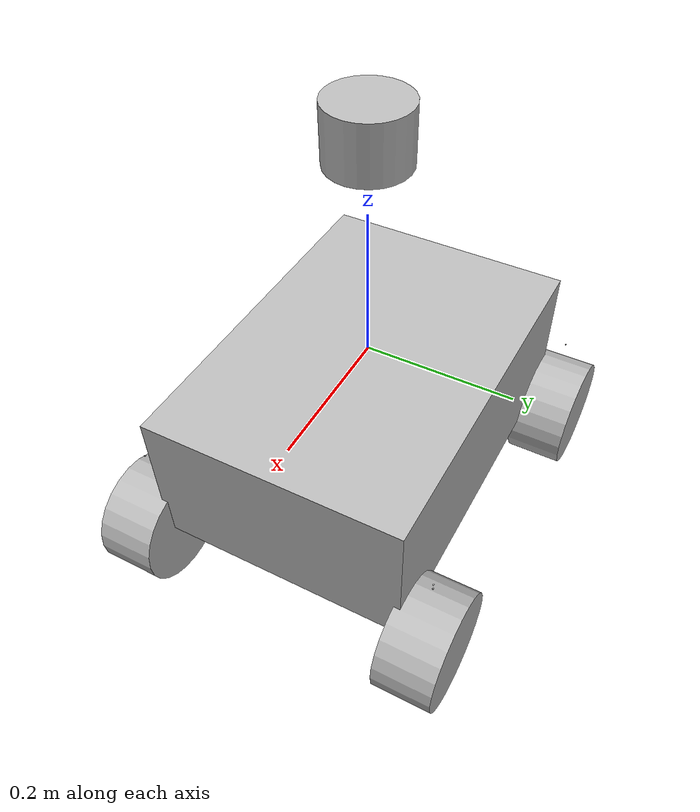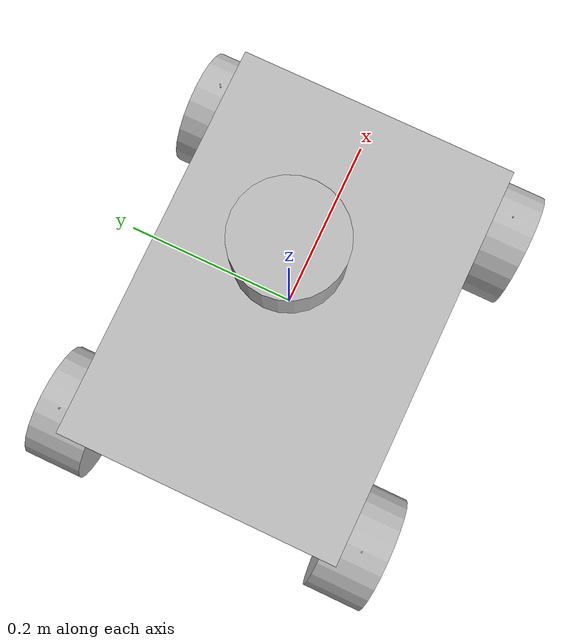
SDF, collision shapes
<sdf version='1.11'>
  <model name='ranger_mini_v2'>
    <link name='base_link'>
      <inertial>
        <pose>0 0 0 0 0 0</pose>
        <mass>10</mass>
        <inertia>
          <ixx>1</ixx>
          <ixy>0</ixy>
          <ixz>0</ixz>
          <iyy>1</iyy>
          <iyz>0</iyz>
          <izz>1</izz>
        </inertia>
      </inertial>
      <collision name='base_link_collision'>
        <pose>0 0 -0.10000000000000001 0 0 0</pose>
        <geometry>
          <box>
            <size>0.5 0.34999999999999998 0.20000000000000001</size>
          </box>
        </geometry>
      </collision>
      <visual name='base_link_visual'>
        <pose>0 0 0 1.5700000000000001 4.3368086899420177e-19 3.1400000000000001</pose>
        <geometry>
          <mesh>
            <scale>1 1 1</scale>
            <uri>model://ranger_description/models/meshes/ranger_base.dae</uri>
          </mesh>
        </geometry>
      </visual>
    </link>
    <joint name='fl_steering_wheel' type='revolute'>
      <pose relative_to='base_link'>0.23000000000000001 0.20599999999999999 -0.10000000000000001 0 0 0</pose>
      <parent>base_link</parent>
      <child>fl_steering_wheel_link</child>
      <axis>
        <xyz>0 0 1</xyz>
        <limit>
          <lower>-2.1000000000000001</lower>
          <upper>2.1000000000000001</upper>
          <effort>5</effort>
          <velocity>6.2800000000000002</velocity>
        </limit>
        <dynamics>
          <spring_reference>0</spring_reference>
          <spring_stiffness>0</spring_stiffness>
        </dynamics>
      </axis>
    </joint>
    <link name='fl_steering_wheel_link'>
      <pose relative_to='fl_steering_wheel'>0 0 0 0 0 0</pose>
      <inertial>
        <pose>0 0 0 0 0 0</pose>
        <mass>1</mass>
        <inertia>
          <ixx>0.01</ixx>
          <ixy>0</ixy>
          <ixz>0</ixz>
          <iyy>0.01</iyy>
          <iyz>0</iyz>
          <izz>0.01</izz>
        </inertia>
      </inertial>
      <collision name='fl_steering_wheel_link_collision'>
        <pose>0 0 0.0080000000000000002 0 0 0</pose>
        <geometry>
          <cylinder>
            <length>0.001</length>
            <radius>0.001</radius>
          </cylinder>
        </geometry>
      </collision>
      <collision name='fl_steering_wheel_link_collision_1'>
        <pose>0 0 0 0 0 0</pose>
        <geometry>
          <cylinder>
            <length>0.001</length>
            <radius>0.001</radius>
          </cylinder>
        </geometry>
      </collision>
      <visual name='fl_steering_wheel_link_visual'>
        <pose>-0.23000000000000001 -0.19400000000000001 0.10000000000000001 1.5700000000000001 4.3368086899420177e-19 3.1400000000000001</pose>
        <geometry>
          <mesh>
            <scale>1 1 1</scale>
            <uri>model://ranger_description/models/meshes/fl.dae</uri>
          </mesh>
        </geometry>
      </visual>
    </link>
    <joint name='fl_wheel' type='revolute'>
      <pose relative_to='fl_steering_wheel_link'>0 0 -0.12 0 0 0</pose>
      <parent>fl_steering_wheel_link</parent>
      <child>fl_wheel_link</child>
      <axis>
        <xyz>0 1 0</xyz>
        <limit>
          <lower>-inf</lower>
          <upper>inf</upper>
        </limit>
        <dynamics>
          <spring_reference>0</spring_reference>
          <spring_stiffness>0</spring_stiffness>
        </dynamics>
      </axis>
    </joint>
    <link name='fl_wheel_link'>
      <pose relative_to='fl_wheel'>0 0 0 0 0 0</pose>
      <inertial>
        <pose>0 0 0 0 0 0</pose>
        <mass>8</mass>
        <inertia>
          <ixx>0.1171</ixx>
          <ixy>0</ixy>
          <ixz>0</ixz>
          <iyy>0.1361</iyy>
          <iyz>0</iyz>
          <izz>0.1171</izz>
        </inertia>
      </inertial>
      <collision name='fl_wheel_link_collision'>
        <pose>0 0 0 1.5700000000000001 0 0</pose>
        <geometry>
          <cylinder>
            <length>0.080000000000000002</length>
            <radius>0.080000000000000002</radius>
          </cylinder>
        </geometry>
      </collision>
      <visual name='fl_wheel_link_visual'>
        <pose>0 0 0 1.5700000000000001 0 0</pose>
        <geometry>
          <cylinder>
            <length>0.01</length>
            <radius>0.01</radius>
          </cylinder>
        </geometry>
      </visual>
    </link>
    <joint name='fr_steering_wheel' type='revolute'>
      <pose relative_to='base_link'>0.23000000000000001 -0.20599999999999999 -0.10000000000000001 0 0 0</pose>
      <parent>base_link</parent>
      <child>fr_steering_wheel_link</child>
      <axis>
        <xyz>0 0 1</xyz>
        <limit>
          <lower>-2.1000000000000001</lower>
          <upper>2.1000000000000001</upper>
          <effort>5</effort>
          <velocity>6.2800000000000002</velocity>
        </limit>
        <dynamics>
          <spring_reference>0</spring_reference>
          <spring_stiffness>0</spring_stiffness>
        </dynamics>
      </axis>
    </joint>
    <link name='fr_steering_wheel_link'>
      <pose relative_to='fr_steering_wheel'>0 0 0 0 0 0</pose>
      <inertial>
        <pose>0 0 0 0 0 0</pose>
        <mass>1</mass>
        <inertia>
          <ixx>0.01</ixx>
          <ixy>0</ixy>
          <ixz>0</ixz>
          <iyy>0.01</iyy>
          <iyz>0</iyz>
          <izz>0.01</izz>
        </inertia>
      </inertial>
      <collision name='fr_steering_wheel_link_collision'>
        <pose>0 0 0.0080000000000000002 0 0 0</pose>
        <geometry>
          <cylinder>
            <length>0.001</length>
            <radius>0.001</radius>
          </cylinder>
        </geometry>
      </collision>
      <visual name='fr_steering_wheel_link_visual'>
        <pose>-0.23000000000000001 0.19400000000000001 0.10000000000000001 1.5700000000000001 4.3368086899420177e-19 3.1400000000000001</pose>
        <geometry>
          <mesh>
            <scale>1 1 1</scale>
            <uri>model://ranger_description/models/meshes/fr.dae</uri>
          </mesh>
        </geometry>
      </visual>
    </link>
    <joint name='fr_wheel' type='revolute'>
      <pose relative_to='fr_steering_wheel_link'>0 0 -0.12 0 0 0</pose>
      <parent>fr_steering_wheel_link</parent>
      <child>fr_wheel_link</child>
      <axis>
        <xyz>0 1 0</xyz>
        <limit>
          <lower>-inf</lower>
          <upper>inf</upper>
        </limit>
        <dynamics>
          <spring_reference>0</spring_reference>
          <spring_stiffness>0</spring_stiffness>
        </dynamics>
      </axis>
    </joint>
    <link name='fr_wheel_link'>
      <pose relative_to='fr_wheel'>0 0 0 0 0 0</pose>
      <inertial>
        <pose>0 0 0 0 0 0</pose>
        <mass>8</mass>
        <inertia>
          <ixx>0.1171</ixx>
          <ixy>0</ixy>
          <ixz>0</ixz>
          <iyy>0.1361</iyy>
          <iyz>0</iyz>
          <izz>0.1171</izz>
        </inertia>
      </inertial>
      <collision name='fr_wheel_link_collision'>
        <pose>0 0 0 1.5700000000000001 0 0</pose>
        <geometry>
          <cylinder>
            <length>0.08</length>
            <radius>0.08</radius>
          </cylinder>
        </geometry>
      </collision>
      <visual name='fr_wheel_link_visual'>
        <pose>0 0 0 1.5700000000000001 0 0</pose>
        <geometry>
          <cylinder>
            <length>0.01</length>
            <radius>0.01</radius>
          </cylinder>
        </geometry>
      </visual>
    </link>
    <joint name='rl_steering_wheel' type='revolute'>
      <pose relative_to='base_link'>-0.23000000000000001 0.20599999999999999 -0.10000000000000001 0 0 0</pose>
      <parent>base_link</parent>
      <child>rl_steering_wheel_link</child>
      <axis>
        <xyz>0 0 1</xyz>
        <limit>
          <lower>-2.1000000000000001</lower>
          <upper>2.1000000000000001</upper>
          <effort>5</effort>
          <velocity>6.2800000000000002</velocity>
        </limit>
        <dynamics>
          <spring_reference>0</spring_reference>
          <spring_stiffness>0</spring_stiffness>
        </dynamics>
      </axis>
    </joint>
    <link name='rl_steering_wheel_link'>
      <pose relative_to='rl_steering_wheel'>0 0 0 0 0 0</pose>
      <inertial>
        <pose>0 0 0 0 0 0</pose>
        <mass>1</mass>
        <inertia>
          <ixx>0.01</ixx>
          <ixy>0</ixy>
          <ixz>0</ixz>
          <iyy>0.01</iyy>
          <iyz>0</iyz>
          <izz>0.01</izz>
        </inertia>
      </inertial>
      <collision name='rl_steering_wheel_link_collision'>
        <pose>0 0 0.0080000000000000002 0 0 0</pose>
        <geometry>
          <cylinder>
            <length>0.001</length>
            <radius>0.001</radius>
          </cylinder>
        </geometry>
      </collision>
      <visual name='rl_steering_wheel_link_visual'>
        <pose>-0.23000000000000001 -0.19400000000000001 0.10000000000000001 1.5700000000000001 4.3368086899420177e-19 3.1400000000000001</pose>
        <geometry>
          <mesh>
            <scale>1 1 1</scale>
            <uri>model://ranger_description/models/meshes/fl.dae</uri>
          </mesh>
        </geometry>
      </visual>
    </link>
    <joint name='rl_wheel' type='revolute'>
      <pose relative_to='rl_steering_wheel_link'>0 0 -0.12 0 0 0</pose>
      <parent>rl_steering_wheel_link</parent>
      <child>rl_wheel_link</child>
      <axis>
        <xyz>0 1 0</xyz>
        <limit>
          <lower>-inf</lower>
          <upper>inf</upper>
        </limit>
        <dynamics>
          <spring_reference>0</spring_reference>
          <spring_stiffness>0</spring_stiffness>
        </dynamics>
      </axis>
    </joint>
    <link name='rl_wheel_link'>
      <pose relative_to='rl_wheel'>0 0 0 0 0 0</pose>
      <inertial>
        <pose>0 0 0 0 0 0</pose>
        <mass>8</mass>
        <inertia>
          <ixx>0.1171</ixx>
          <ixy>0</ixy>
          <ixz>0</ixz>
          <iyy>0.1361</iyy>
          <iyz>0</iyz>
          <izz>0.1171</izz>
        </inertia>
      </inertial>
      <collision name='rl_wheel_link_collision'>
        <pose>0 0 0 1.5700000000000001 0 0</pose>
        <geometry>
          <cylinder>
            <length>0.080000000000000002</length>
            <radius>0.080000000000000002</radius>
          </cylinder>
        </geometry>
      </collision>
      <visual name='rl_wheel_link_visual'>
        <pose>0 0 0 1.5700000000000001 0 0</pose>
        <geometry>
          <cylinder>
            <length>0.01</length>
            <radius>0.01</radius>
          </cylinder>
        </geometry>
      </visual>
    </link>
    <joint name='rr_steering_wheel' type='revolute'>
      <pose relative_to='base_link'>-0.23000000000000001 -0.20599999999999999 -0.10000000000000001 0 0 0</pose>
      <parent>base_link</parent>
      <child>rr_steering_wheel_link</child>
      <axis>
        <xyz>0 0 1</xyz>
        <limit>
          <lower>-2.1000000000000001</lower>
          <upper>2.1000000000000001</upper>
          <effort>5</effort>
          <velocity>6.2800000000000002</velocity>
        </limit>
        <dynamics>
          <spring_reference>0</spring_reference>
          <spring_stiffness>0</spring_stiffness>
        </dynamics>
      </axis>
    </joint>
    <link name='rr_steering_wheel_link'>
      <pose relative_to='rr_steering_wheel'>0 0 0 0 0 0</pose>
      <inertial>
        <pose>0 0 0 0 0 0</pose>
        <mass>1</mass>
        <inertia>
          <ixx>0.01</ixx>
          <ixy>0</ixy>
          <ixz>0</ixz>
          <iyy>0.01</iyy>
          <iyz>0</iyz>
          <izz>0.01</izz>
        </inertia>
      </inertial>
      <collision name='rr_steering_wheel_link_collision'>
        <pose>0 0 0 0 0 0</pose>
        <geometry>
          <cylinder>
            <length>0.001</length>
            <radius>0.001</radius>
          </cylinder>
        </geometry>
      </collision>
      <visual name='rr_steering_wheel_link_visual'>
        <pose>-0.23000000000000001 0.19400000000000001 0.10000000000000001 1.5700000000000001 4.3368086899420177e-19 3.1400000000000001</pose>
        <geometry>
          <mesh>
            <scale>1 1 1</scale>
            <uri>model://ranger_description/models/meshes/fr.dae</uri>
          </mesh>
        </geometry>
      </visual>
    </link>
    <joint name='rr_wheel' type='revolute'>
      <pose relative_to='rr_steering_wheel_link'>0 0 -0.12 0 0 0</pose>
      <parent>rr_steering_wheel_link</parent>
      <child>rr_wheel_link</child>
      <axis>
        <xyz>0 1 0</xyz>
        <limit>
          <lower>-inf</lower>
          <upper>inf</upper>
        </limit>
        <dynamics>
          <spring_reference>0</spring_reference>
          <spring_stiffness>0</spring_stiffness>
        </dynamics>
      </axis>
    </joint>
    <link name='rr_wheel_link'>
      <pose relative_to='rr_wheel'>0 0 0 0 0 0</pose>
      <inertial>
        <pose>0 0 0 0 0 0</pose>
        <mass>8</mass>
        <inertia>
          <ixx>0.1171</ixx>
          <ixy>0</ixy>
          <ixz>0</ixz>
          <iyy>0.1361</iyy>
          <iyz>0</iyz>
          <izz>0.1171</izz>
        </inertia>
      </inertial>
      <collision name='rr_wheel_link_collision'>
        <pose>0 0 0 1.5700000000000001 0 0</pose>
        <geometry>
          <cylinder>
            <length>0.080000000000000002</length>
            <radius>0.080000000000000002</radius>
          </cylinder>
        </geometry>
      </collision>
      <visual name='rr_wheel_link_visual'>
        <pose>0 0 0 1.5700000000000001 0 0</pose>
        <geometry>
          <cylinder>
            <length>0.01</length>
            <radius>0.01</radius>
          </cylinder>
        </geometry>
      </visual>
    </link>
    <joint name='lidar_joint' type='fixed'>
      <pose relative_to='base_link'>0 0 0.3 0 0 0</pose>
      <parent>base_link</parent>
      <child>lidar_link</child>
      <axis>
        <xyz>0 0 1</xyz>
      </axis>
    </joint>
    <link name='lidar_link'>
      <pose relative_to='lidar_joint'>0 0 0 0 0 0</pose>
      <inertial>
        <pose>0 0 0 0 0 0</pose>
        <mass>0.830</mass>
        <inertia>
          <ixx>0.000909</ixx>
          <ixy>0</ixy>
          <ixz>0</ixz>
          <iyy>0.000909</iyy>
          <iyz>0</iyz>
          <izz>0.001107</izz>
        </inertia>
      </inertial>
      <collision name='lidar_link_collision'>
        <pose>0 0 0 0 0 0</pose>
        <geometry>
          <cylinder>
            <length>0.0717</length>
            <radius>0.05165</radius>
          </cylinder>
        </geometry>
      </collision>
      <visual name='lidar_link_visual'>
        <pose>0 0 0 0 0 0</pose>
        <geometry>
          <cylinder>
            <length>0.0717</length>
            <radius>0.05165</radius>
          </cylinder>
        </geometry>
      </visual>
      <sensor name='gpu_lidar' type='gpu_lidar'>
        <topic>lidar</topic>
        <gz_frame_id>lidar_link</gz_frame_id>
        <update_rate>5</update_rate>
        <lidar>
          <scan>
            <horizontal>
              <samples>640</samples>
              <resolution>1</resolution>
              <min_angle>-3.1416</min_angle>
              <max_angle>3.1416</max_angle>
            </horizontal>
          </scan>
          <range>
            <min>0.08</min>
            <max>50.0</max>
            <resolution>0.01</resolution>
          </range>
        </lidar>
        <alwaysOn>true</alwaysOn>
        <visualize>true</visualize>
      </sensor>
    </link>
    <plugin filename="gz-sim-joint-state-publisher-system"
        name="gz::sim::systems::JointStatePublisher">
        <topic>joint_states</topic>
        <joint_name>fl_steering_wheel</joint_name>
        <joint_name>fl_wheel</joint_name>
        <joint_name>rl_steering_wheel</joint_name>
        <joint_name>rl_wheel</joint_name>
        <joint_name>fr_steering_wheel</joint_name>
        <joint_name>fr_wheel</joint_name>
        <joint_name>rr_steering_wheel</joint_name>
        <joint_name>rr_wheel</joint_name>
    </plugin>
    <plugin filename="Synchro"
        name="gz::sim::v8::systems::Synchro">
        <wheel_base>0.460,</wheel_base>
        <wheel_radius>0.08</wheel_radius>
        <track> 0.412 </track>
        <frame_id>odom</frame_id>
        <child_frame_id>base_link</child_frame_id>
        <p_gain_steering>1.2</p_gain_steering>
        <p_gain_vel>0.8</p_gain_vel>
        <xyz_offset>0.0 0.0 0.3</xyz_offset>
        <rpy_offset>0.0 0.0 0.0</rpy_offset>
        <gt_odom>true</gt_odom>
        <fl_traction_joint>fl_wheel</fl_traction_joint>
        <rl_traction_joint>rl_wheel</rl_traction_joint>
        <fr_traction_joint>fr_wheel</fr_traction_joint>
        <rr_traction_joint>rr_wheel</rr_traction_joint>
        <fl_steering_joint>fl_steering_wheel</fl_steering_joint>
        <rl_steering_joint>rl_steering_wheel</rl_steering_joint>
        <fr_steering_joint>fr_steering_wheel</fr_steering_joint>
        <rr_steering_joint>rr_steering_wheel</rr_steering_joint>
    </plugin>
  </model>
</sdf>
